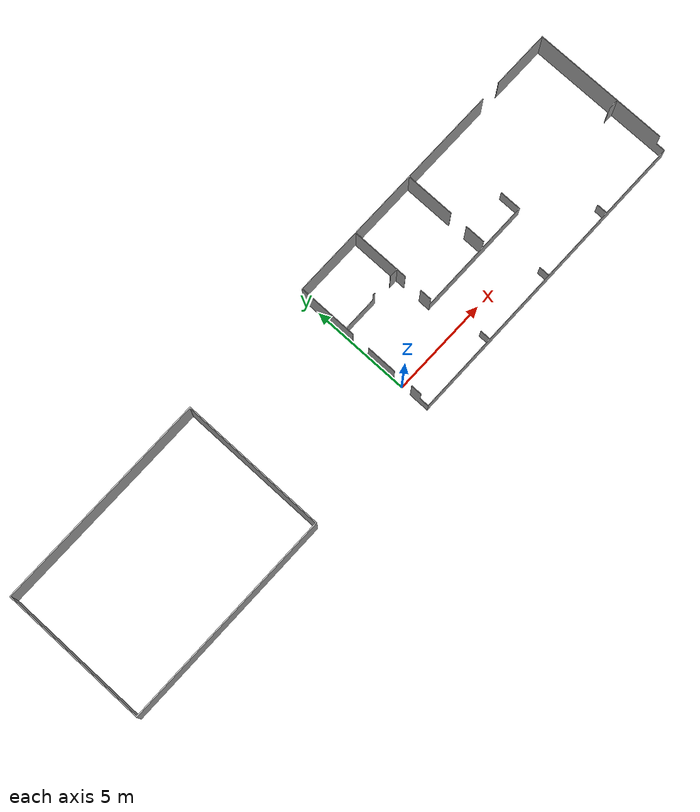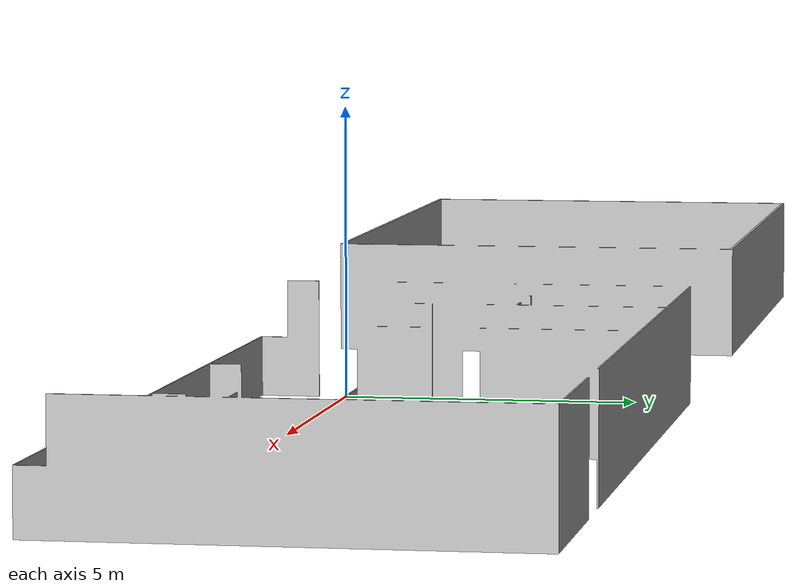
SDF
<?xml version="1.0"?>
<sdf version="1.6">
  <model name="rwc2016a/walls">
    <link name="1_link">
      <collision name="1_col">
        <geometry>
          <mesh>
            <uri>model://rwc2016a/walls/heightmap.stl</uri>
          </mesh>
        </geometry>
      </collision>
      <visual name="1_vis">
        <geometry>
          <mesh>
            <uri>model://rwc2016a/walls/heightmap.stl</uri>
          </mesh>
        </geometry>
      </visual>
      <pose>0 0 0 0 0 0</pose>
    </link>
    <static>true</static>
  </model>
</sdf>
